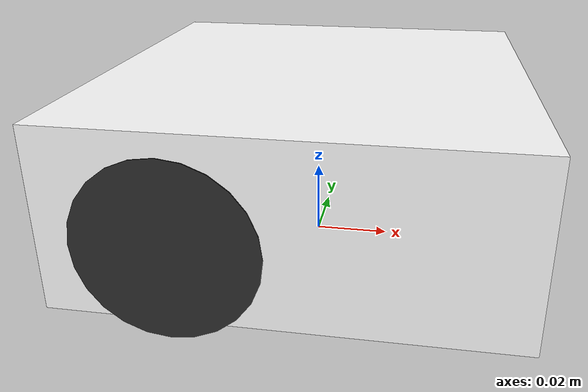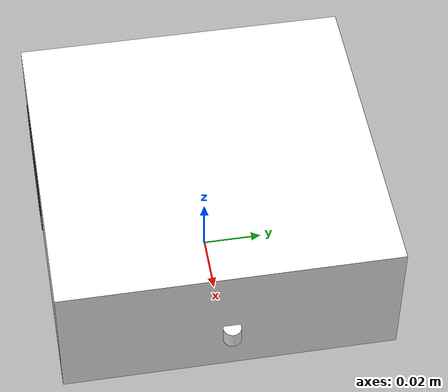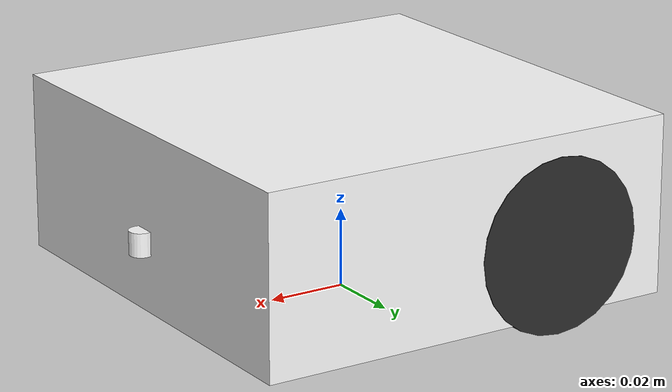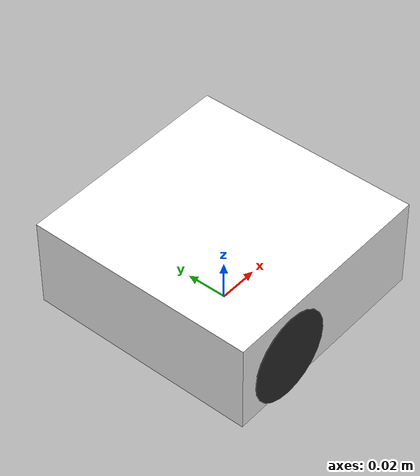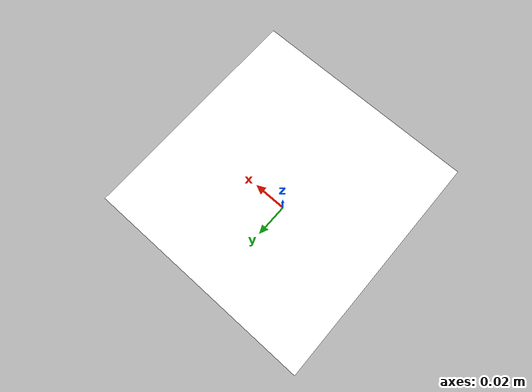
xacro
<?xml version="1.0"?>

<robot xmlns:xacro="https://www.ros.org/wiki/xacro" name="thymio">

    <xacro:include filename="$(find ros_basics_2019)/urdf/macros.xacro" />

    <xacro:arg name="left_wheel_mu" default="100.0"/>
    <xacro:property name="left_wheel_mu_p" value="$(arg left_wheel_mu)"/>

    <xacro:arg name="right_wheel_mu" default="100.0"/>
    <xacro:property name="right_wheel_mu_p" value="$(arg right_wheel_mu)"/>

    <xacro:property name="wheel_r" value="0.022"/>
    <xacro:property name="wheel_l" value="0.015"/>

    <xacro:arg name="mass" default="0.270"/>
    <xacro:property name="mass_p" value="$(arg mass)"/>

    <xacro:property name="body_mass" value="${mass_p * 0.80}"/>
    <xacro:property name="wheel_mass" value="${mass_p * 0.10}"/>

    <material name="white">
        <color rgba="1.0 1.0 1.0 1.0"/>
    </material>
    <material name="black">
        <color rgba="0.175 0.175 0.175 1.0"/>
    </material>
		<gazebo reference="base_link">
 <material>Gazebo/White</material>
</gazebo>
<gazebo reference="left_wheel_link">
 <material>Gazebo/Black</material>
</gazebo>
<gazebo reference="right_wheel_link">
 <material>Gazebo/Black</material>
</gazebo>

    <link name="base_link">
        <inertial>
            <mass value="${body_mass}"/>
            <xacro:box_inertia m="${body_mass}" x="0.11" y="0.112" z="0.045" />
        </inertial>

        <collision name="collision_body">
            <origin xyz="0 0 ${0.045 - 2*0.009}"/>
            <geometry>
                <box size="0.11 0.112 0.045"/>
            </geometry>
            <material name="white"/>
        </collision>
        <collision name="collision_caster">
            <origin xyz="0.035 0 0.009"/>
            <geometry>
                <sphere radius="0.009"/>
            </geometry>
        </collision>

        <visual name="visual_body">
            <origin xyz="0 0 ${0.045 - 2*0.009}"/>
            <geometry>
                <box size="0.11 0.112 0.045"/>
            </geometry>
            <material name="white"/>
        </visual>
        <visual name="visual_caster">
            <origin xyz="0.035 0 0.009"/>
            <geometry>
                <sphere radius="0.009"/>
            </geometry>
        </visual>
    </link>

    <joint name="left_wheel_joint" type="continuous">
        <parent link="base_link"/>
        <child link="left_wheel_link"/>
        <axis rpy="0 0 0" xyz="0 1 0"/>
        <origin xyz="-0.025 0.047 0.022"/>
        <joint_properties damping="0.0" friction="0.0" />
    </joint>

    <link name="left_wheel_link">
        <inertial>
            <mass value="${wheel_mass}"/>
            <xacro:cylinder_inertia m="${wheel_mass}" r="${wheel_r}" h="${wheel_l}" />
        </inertial>

        <collision name="collision_left_wheel_link">
            <origin xyz="0 0.00175 0.0" rpy="1.5707 0 0"/>
            <geometry>
                <cylinder radius="${wheel_r}" length="${wheel_l}"/>
            </geometry>
        </collision>

        <visual name="visual_left_wheel_link">
            <origin xyz="0 0.00175 0.0" rpy="1.5707 0 0"/>
            <geometry>
                <cylinder length="${wheel_l}" radius="${wheel_r}"/>
            </geometry>
            <material name="black"/>
        </visual>
    </link>

    <joint name="right_wheel_joint" type="continuous">
        <parent link="base_link"/>
        <child link="right_wheel_link"/>
        <axis xyz="0 1 0"/>
        <origin rpy="0 0 0" xyz="-0.025 -0.047 0.022"/>
        <joint_properties damping="0.0" friction="0.0" />
    </joint>

    <link name="right_wheel_link">
        <inertial>
            <mass value="${wheel_mass}"/>
            <xacro:cylinder_inertia m="${wheel_mass}" r="${wheel_r}" h="${wheel_l}" />
        </inertial>

        <collision name="collision_right_wheel_link">
            <origin xyz="0 -0.00175 0.0" rpy="1.5707 0 0"/>
            <geometry>
                <cylinder length="${wheel_l}" radius="${wheel_r}"/>
            </geometry>
        </collision>

        <visual name="visual_right_wheel_link">
            <origin xyz="0 -0.00175 0.0" rpy="1.5707 0 0"/>
            <geometry>
                <cylinder length="${wheel_l}" radius="${wheel_r}"/>
            </geometry>
            <material name="black"/>
        </visual>
    </link>

    <link name="sensor_laser">
    <inertial>
      <origin xyz="0 0 0" rpy="0 0 0" />
      <mass value="0.01" />

      <inertia ixx="0.000002" ixy="0" ixz="0" iyy="0.000002" iyz="0" izz="0.000002"/>
    </inertial>

    <visual>
      <origin xyz="0 0 0" rpy="0 0 0" />
      <geometry>
        <cylinder radius="0.003" length="0.006"/>
      </geometry>
      <material name="white" />
    </visual>

    <collision>
      <origin xyz="0 0 0" rpy="0 0 0"/>
      <geometry>
        <cylinder radius="0.003" length="0.003"/>
      </geometry>
    </collision>
  </link>

  <joint name="joint_sensor_laser" type="fixed">
    <origin xyz="0.056 0 0.022" rpy="0 0 0"/>
    <parent link="base_link"/>
    <child link="sensor_laser"/>
  </joint>

    <gazebo>
        <plugin name="differential_drive_controller" filename="libgazebo_ros_diff_drive.so">
            <alwaysOn>true</alwaysOn>
            <updateRate>20</updateRate>
            <leftJoint>right_wheel_joint</leftJoint>
            <rightJoint>left_wheel_joint</rightJoint>
            <wheelSeparation>0.0955</wheelSeparation>
            <wheelDiameter>0.044</wheelDiameter>

            <commandTopic>cmd_vel</commandTopic>
            <odometryTopic>odom</odometryTopic>
            <odometryFrame>odom</odometryFrame>

            <robotBaseFrame>base_link</robotBaseFrame>
        </plugin>
    </gazebo>
<gazebo reference ="sensor_laser">
    <sensor type="ray" name="head_hokuyo_sensor">
      <pose>0 0 0 0 0 0</pose>
      <visualize>true</visualize>
      <update_rate>10</update_rate>
      <ray>
        <scan>
          <horizontal>
            <samples>720</samples>
            <resolution>1</resolution>
            <min_angle>-1</min_angle>
            <max_angle>1</max_angle>
          </horizontal>
        </scan>
        <range>
          <min>0.01</min>
          <max>0.14</max>
          <resolution>0.01</resolution>
        </range>
        <noise>
          <type>gaussian</type>
          <mean>0.0</mean>
          <stddev>0.01</stddev>
        </noise>
      </ray>
      <plugin name="laser" filename="libgazebo_ros_laser.so">
        <topicName>/thymio/scan</topicName>
        <frameName>sensor_laser</frameName>
      </plugin>
    </sensor>
  </gazebo>

</robot>
